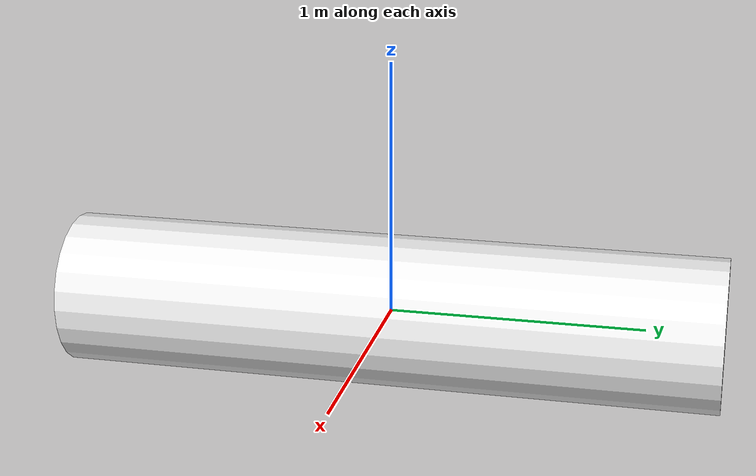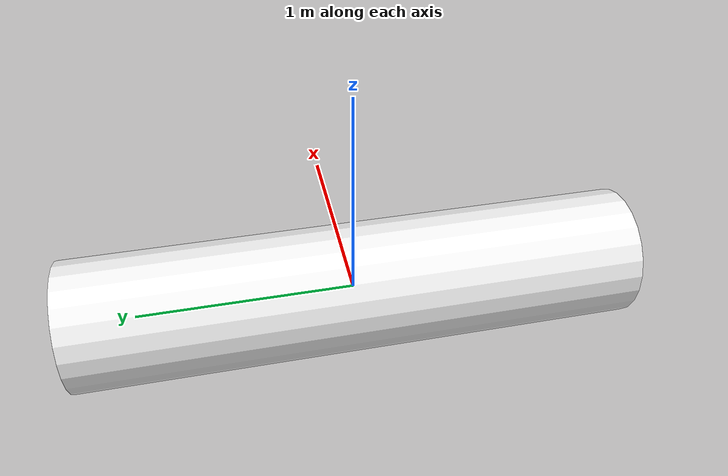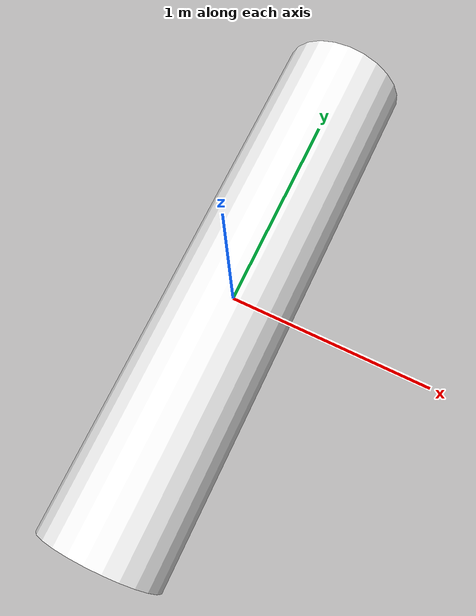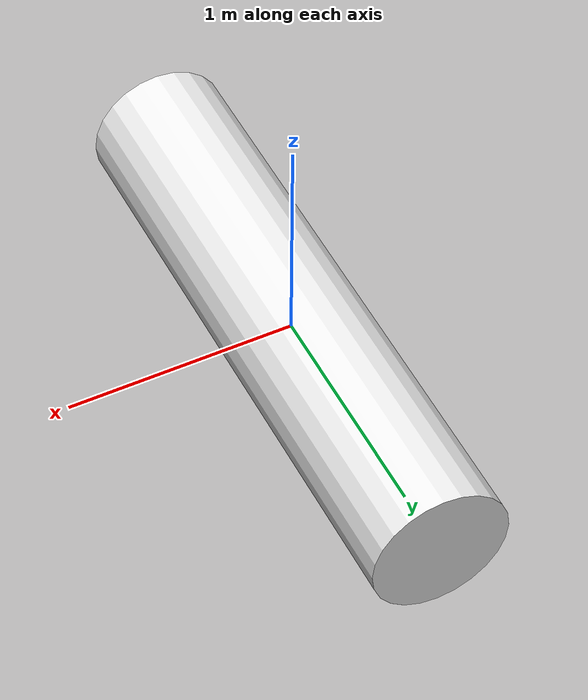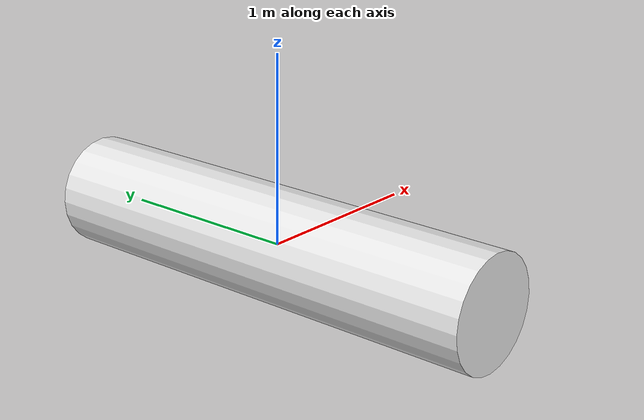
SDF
<?xml version='1.0'?>
<sdf version='1.5'>

  <model name='surfacevehicle'>
    <pose>0 0 0 1.5707963267948966 0 0</pose>
    <link name='body'>
      <pose>0 0 0 0 0 0</pose>
      <inertial>
        <mass>3.0f</mass>
        <inertia>
          <ixx>1.7575</ixx>
          <ixy>0</ixy>
          <ixz>0</ixz>
          <iyy>1.7575</iyy>
          <iyz>0</iyz>
          <izz>0.135</izz>
        </inertia>
      </inertial>

      <visual name='body_visual'>
        <geometry>
              <cylinder>
                <radius>0.3</radius>
                <length>2.6</length>
              </cylinder>
            </geometry>
        <material>
            <script>
              <uri>file://media/materials/scripts/gazebo.material</uri>
              <name>Gazebo/White</name>
            </script>
          </material>
      </visual>
      <collision name='body_collision'>
        <geometry>
              <cylinder>
                <radius>0.3</radius>
                <length>2.6</length>
              </cylinder>
            </geometry>
      </collision>

    </link>

    <allow_auto_disable>1</allow_auto_disable>

    <plugin name="buoyancy" filename="libsurface_buoyancy.so">
      <fluid_density>1000.0</fluid_density>
    </plugin>

  </model>
</sdf>
